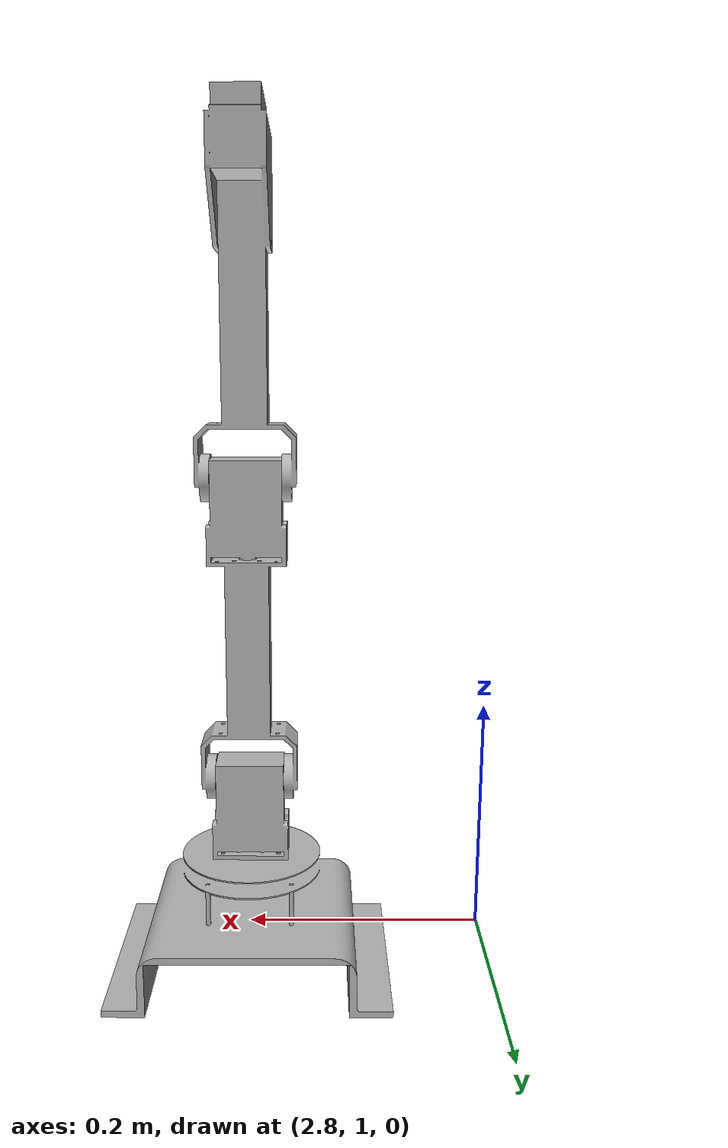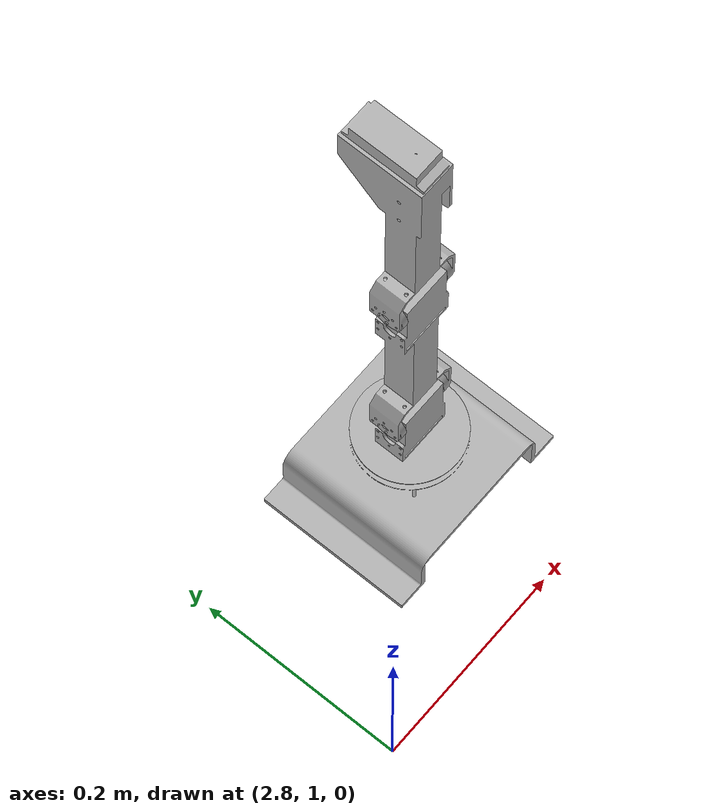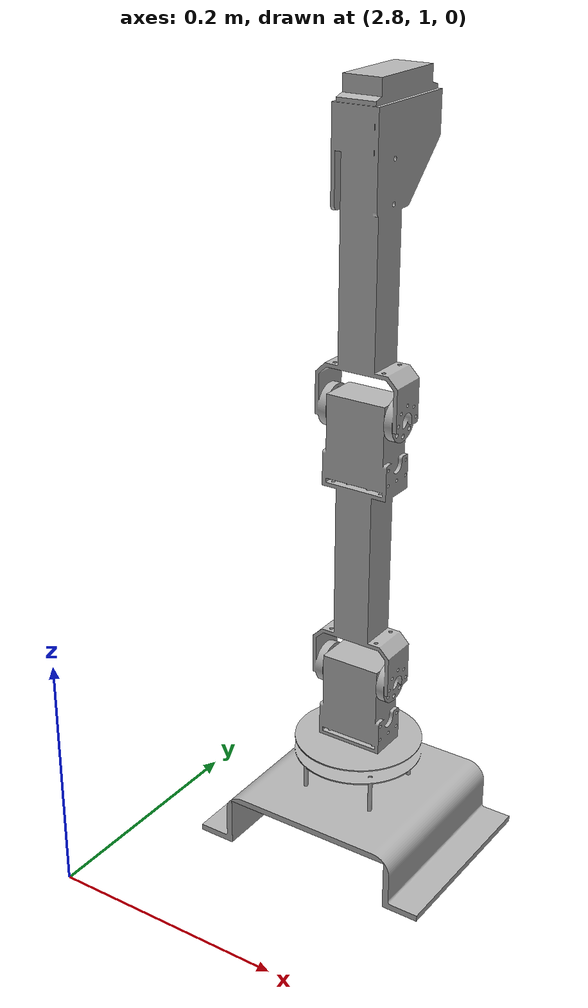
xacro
<?xml version="1.0" ?>
<robot name="combine_ver2" xmlns:xacro="http://www.ros.org/wiki/xacro">

<xacro:include filename="$(find myrobot_description)/urdf/materials.xacro" />
<xacro:include filename="$(find myrobot_description)/urdf/combine_ver2.trans" />
<xacro:include filename="$(find myrobot_description)/urdf/combine_ver2.gazebo" />
<link name="base_link">
  <inertial>
    <origin xyz="-0.00032369128576503086 0.028524423888811844 0.0003236166719384824" rpy="0 0 0"/>
    <mass value="8.282925435380717"/>
    <inertia ixx="0.014407" iyy="0.022788" izz="0.014381" ixy="-3.1e-05" iyz="3.1e-05" ixz="-0.000135"/>
  </inertial>
  <visual>
    <origin xyz="0 0 0" rpy="0 0 0"/>
    <geometry>
      <mesh filename="package://myrobot_description/meshes/base_link.stl" scale="0.001 0.001 0.001"/>
    </geometry>
    <material name="silver"/>
  </visual>
  <collision>
    <origin xyz="0 0 0" rpy="0 0 0"/>
    <geometry>
      <mesh filename="package://myrobot_description/meshes/base_link.stl" scale="0.001 0.001 0.001"/>
    </geometry>
  </collision>
</link>

<link name="link_1_1">
  <inertial>
    <origin xyz="-0.005741445745407814 0.07885914018496232 -2.6580605692793916e-07" rpy="0 0 0"/>
    <mass value="14.854415574615365"/>
    <inertia ixx="0.042298" iyy="0.029165" izz="0.044616" ixy="1.2e-05" iyz="-0.0" ixz="-0.0"/>
  </inertial>
  <visual>
    <origin xyz="-0.0 -0.066 -0.0" rpy="0 0 0"/>
    <geometry>
      <mesh filename="package://myrobot_description/meshes/link_1_1.stl" scale="0.001 0.001 0.001"/>
    </geometry>
    <material name="silver"/>
  </visual>
  <collision>
    <origin xyz="-0.0 -0.066 -0.0" rpy="0 0 0"/>
    <geometry>
      <mesh filename="package://myrobot_description/meshes/link_1_1.stl" scale="0.001 0.001 0.001"/>
    </geometry>
  </collision>
</link>

<link name="link_2_1">
  <inertial>
    <origin xyz="-0.0788636253471422 0.01016967915401723 8.983516573024477e-08" rpy="0 0 0"/>
    <mass value="15.807925616824432"/>
    <inertia ixx="0.034246" iyy="0.043491" izz="0.050036" ixy="2.2e-05" iyz="-0.0" ixz="0.0"/>
  </inertial>
  <visual>
    <origin xyz="0.0668 -0.145 0.0" rpy="0 0 0"/>
    <geometry>
      <mesh filename="package://myrobot_description/meshes/link_2_1.stl" scale="0.001 0.001 0.001"/>
    </geometry>
    <material name="silver"/>
  </visual>
  <collision>
    <origin xyz="0.0668 -0.145 0.0" rpy="0 0 0"/>
    <geometry>
      <mesh filename="package://myrobot_description/meshes/link_2_1.stl" scale="0.001 0.001 0.001"/>
    </geometry>
  </collision>
</link>

<link name="link_3_1">
  <inertial>
    <origin xyz="3.318985666578289e-07 0.0975999741462713 -2.6113383454114785e-10" rpy="0 0 0"/>
    <mass value="13.346959246531098"/>
    <inertia ixx="0.055128" iyy="0.018739" izz="0.052867" ixy="0.0" iyz="0.0" ixz="-0.0"/>
  </inertial>
  <visual>
    <origin xyz="0.145801 -0.22625 0.0" rpy="0 0 0"/>
    <geometry>
      <mesh filename="package://myrobot_description/meshes/link_3_1.stl" scale="0.001 0.001 0.001"/>
    </geometry>
    <material name="silver"/>
  </visual>
  <collision>
    <origin xyz="0.145801 -0.22625 0.0" rpy="0 0 0"/>
    <geometry>
      <mesh filename="package://myrobot_description/meshes/link_3_1.stl" scale="0.001 0.001 0.001"/>
    </geometry>
  </collision>
</link>

<joint name="Revolute 1" type="continuous">
  <origin xyz="0.0 0.066 0.0" rpy="0 0 0"/>
  <parent link="base_link"/>
  <child link="link_1_1"/>
  <axis xyz="0.0 1.0 0.0"/>
</joint>

<joint name="Revolute 2" type="continuous">
  <origin xyz="-0.0668 0.079 -0.0" rpy="0 0 0"/>
  <parent link="link_1_1"/>
  <child link="link_2_1"/>
  <axis xyz="-1.0 0.0 0.0"/>
</joint>

<joint name="Rigid 3" type="fixed">
  <origin xyz="-0.079001 0.08125 0.0" rpy="0 0 0"/>
  <parent link="link_2_1"/>
  <child link="link_3_1"/>
</joint>

</robot>

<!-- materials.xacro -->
<robot name="robot_ver6" xmlns:xacro="http://www.ros.org/wiki/xacro" >

<material name="silver">
  <color rgba="0.700 0.700 0.700 1.000"/>
</material>

</robot>

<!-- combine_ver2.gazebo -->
<robot name="combine_ver2" xmlns:xacro="http://www.ros.org/wiki/xacro" >

<xacro:property name="body_color" value="Gazebo/Silver" />

<gazebo>
  <plugin name="control" filename="libgazebo_ros_control.so"/>
</gazebo>
<gazebo reference="base_link">
  <material>${body_color}</material>
  <mu1>0.2</mu1>
  <mu2>0.2</mu2>
  <selfCollide>true</selfCollide>
  <gravity>true</gravity>
</gazebo>

<gazebo reference="link_1_1">
  <material>${body_color}</material>
  <mu1>0.2</mu1>
  <mu2>0.2</mu2>
  <selfCollide>true</selfCollide>
</gazebo>

<gazebo reference="link_2_1">
  <material>${body_color}</material>
  <mu1>0.2</mu1>
  <mu2>0.2</mu2>
  <selfCollide>true</selfCollide>
</gazebo>

<gazebo reference="link_3_1">
  <material>${body_color}</material>
  <mu1>0.2</mu1>
  <mu2>0.2</mu2>
  <selfCollide>true</selfCollide>
</gazebo>

</robot>
